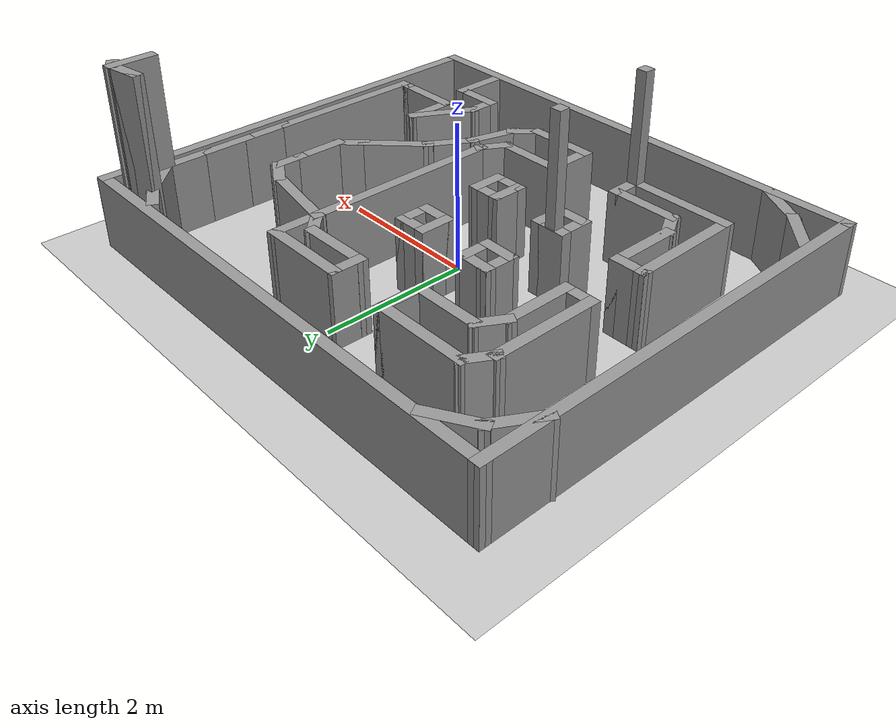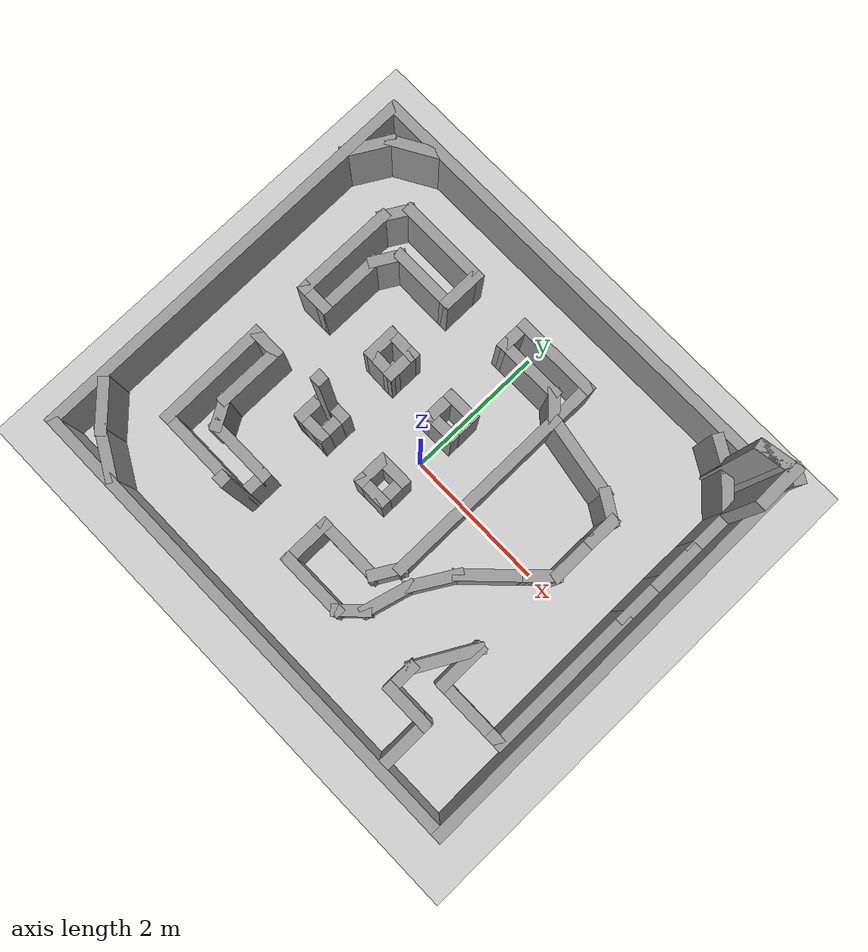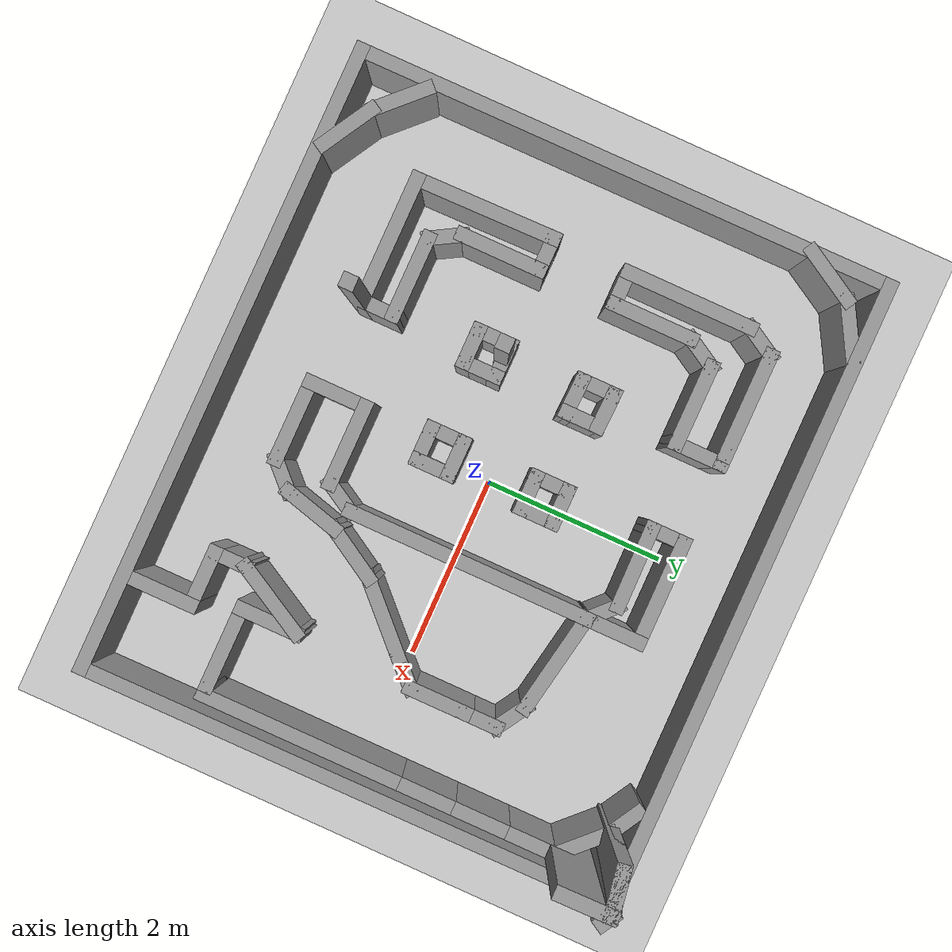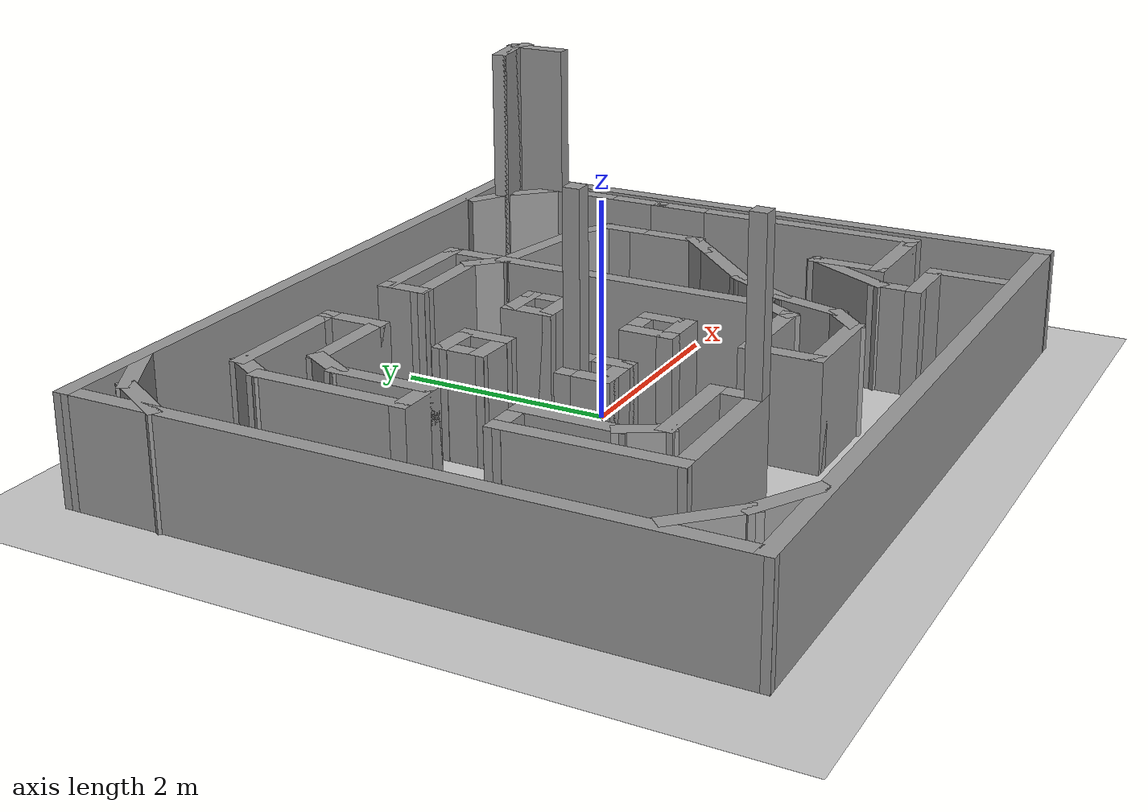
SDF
<sdf version="1.6">
 <world name="default">
  <light name="sun" type="directional">
   <pose>0 0 10 0 -0 0</pose>
   <diffuse>0.8 0.8 0.8 1</diffuse>
   <specular>0.2 0.2 0.2 1</specular>
   <attenuation>
    <range>1000</range>
    <constant>0.9</constant>
    <linear>0.01</linear>
    <quadratic>0.001</quadratic>
   </attenuation>
   <direction>-0.5 0.1 -0.9</direction>
  </light>
  <model name="ground_plane">
   <static>1</static>
   <link name="link">
    <collision name="collision">
     <geometry><plane><normal>0 0 1</normal><size>100 100</size></plane></geometry>
     <surface>
      <contact><collide_bitmask>65535</collide_bitmask></contact>
      <friction><ode><mu>100</mu><mu2>50</mu2></ode></friction>
     </surface>
    </collision>
    <visual name="visual">
     <cast_shadows>0</cast_shadows>
     <geometry><plane><normal>0 0 1</normal><size>100 100</size></plane></geometry>
     <material>
      <script><uri>file://media/materials/scripts/gazebo.material</uri><name>Gazebo/Grey</name></script>
     </material>
    </visual>
   </link>
  </model>
  <gravity>0 0 -9.8</gravity>
  <magnetic_field>6e-06 2.3e-05 -4.2e-05</magnetic_field>
  <atmosphere type="adiabatic"/>
  <physics name="default_physics" default="0" type="ode">
   <max_step_size>0.001</max_step_size>
   <real_time_factor>1</real_time_factor>
   <real_time_update_rate>1000</real_time_update_rate>
  </physics>
  <scene><ambient>0.4 0.4 0.4 1</ambient><background>0.7 0.7 0.7 1</background><shadows>1</shadows></scene>
  <audio><device>default</device></audio>
  <spherical_coordinates>
   <surface_model>EARTH_WGS84</surface_model>
   <latitude_deg>0</latitude_deg>
   <longitude_deg>0</longitude_deg>
   <elevation>0</elevation>
   <heading_deg>0</heading_deg>
  </spherical_coordinates>
  <model name="citymodel">
   <pose>-0.048468 -0.048597 0 0 -0 0</pose>
   <link name="Wall_111">
    <collision name="Wall_111_Collision">
     <geometry><box><size>0.15 0.15 2.5</size></box></geometry>
     <pose>0 0 1.25 0 -0 0</pose>
    </collision>
    <visual name="Wall_111_Visual">
     <pose>0 0 1.25 0 -0 0</pose>
     <geometry><box><size>0.15 0.15 2.5</size></box></geometry>
     <material>
      <script><uri>file://media/materials/scripts/gazebo.material</uri><name>Gazebo/Grey</name></script>
      <ambient>1 1 1 1</ambient>
     </material>
     <meta><layer>0</layer></meta>
    </visual>
    <pose>-1.17192 -0.348396 0 0 -0 0</pose>
   </link>
   <link name="Wall_113">
    <collision name="Wall_113_Collision">
     <geometry><box><size>0.510139 0.15 1</size></box></geometry>
     <pose>0 0 0.5 0 -0 0</pose>
    </collision>
    <visual name="Wall_113_Visual">
     <pose>0 0 0.5 0 -0 0</pose>
     <geometry><box><size>0.510139 0.15 1</size></box></geometry>
     <material>
      <script><uri>file://media/materials/scripts/gazebo.material</uri><name>Gazebo/Grey</name></script>
      <ambient>1 1 1 1</ambient>
     </material>
     <meta><layer>0</layer></meta>
    </visual>
    <pose>-1.10153 0.824597 0 0 -0 -0.027771</pose>
   </link>
   <link name="Wall_114">
    <collision name="Wall_114_Collision">
     <geometry><box><size>0.5 0.15 1</size></box></geometry>
     <pose>0 0 0.5 0 -0 0</pose>
    </collision>
    <visual name="Wall_114_Visual">
     <pose>0 0 0.5 0 -0 0</pose>
     <geometry><box><size>0.5 0.15 1</size></box></geometry>
     <material>
      <script><uri>file://media/materials/scripts/gazebo.material</uri><name>Gazebo/Grey</name></script>
      <ambient>1 1 1 1</ambient>
     </material>
     <meta><layer>0</layer></meta>
    </visual>
    <pose>-0.921532 0.644597 0 0 -0 -1.5708</pose>
   </link>
   <link name="Wall_115">
    <collision name="Wall_115_Collision">
     <geometry><box><size>0.509484 0.15 1</size></box></geometry>
     <pose>0 0 0.5 0 -0 0</pose>
    </collision>
    <visual name="Wall_115_Visual">
     <pose>0 0 0.5 0 -0 0</pose>
     <geometry><box><size>0.509484 0.15 1</size></box></geometry>
     <material>
      <script><uri>file://media/materials/scripts/gazebo.material</uri><name>Gazebo/Grey</name></script>
      <ambient>1 1 1 1</ambient>
     </material>
     <meta><layer>0</layer></meta>
    </visual>
    <pose>-1.10103 0.474097 0 0 -0 3.11653</pose>
   </link>
   <link name="Wall_116">
    <collision name="Wall_116_Collision">
     <geometry><box><size>0.500233 0.15 1</size></box></geometry>
     <pose>0 0 0.5 0 -0 0</pose>
    </collision>
    <visual name="Wall_116_Visual">
     <pose>0 0 0.5 0 -0 0</pose>
     <geometry><box><size>0.500233 0.15 1</size></box></geometry>
     <material>
      <script><uri>file://media/materials/scripts/gazebo.material</uri><name>Gazebo/Grey</name></script>
      <ambient>1 1 1 1</ambient>
     </material>
     <meta><layer>0</layer></meta>
    </visual>
    <pose>-1.28103 0.654097 0 0 -0 1.57364</pose>
   </link>
   <link name="Wall_118">
    <collision name="Wall_118_Collision">
     <geometry><box><size>0.5 0.15 1</size></box></geometry>
     <pose>0 0 0.5 0 -0 0</pose>
    </collision>
    <visual name="Wall_118_Visual">
     <pose>0 0 0.5 0 -0 0</pose>
     <geometry><box><size>0.5 0.15 1</size></box></geometry>
     <material>
      <script><uri>file://media/materials/scripts/gazebo.material</uri><name>Gazebo/Grey</name></script>
      <ambient>1 1 1 1</ambient>
     </material>
     <meta><layer>0</layer></meta>
    </visual>
    <pose>-0.025532 0.807597 0 0 -0 0</pose>
   </link>
   <link name="Wall_119">
    <collision name="Wall_119_Collision">
     <geometry><box><size>0.5 0.15 1</size></box></geometry>
     <pose>0 0 0.5 0 -0 0</pose>
    </collision>
    <visual name="Wall_119_Visual">
     <pose>0 0 0.5 0 -0 0</pose>
     <geometry><box><size>0.5 0.15 1</size></box></geometry>
     <material>
      <script><uri>file://media/materials/scripts/gazebo.material</uri><name>Gazebo/Grey</name></script>
      <ambient>1 1 1 1</ambient>
     </material>
     <meta><layer>0</layer></meta>
    </visual>
    <pose>0.149468 0.632597 0 0 -0 -1.5708</pose>
   </link>
   <link name="Wall_120">
    <collision name="Wall_120_Collision">
     <geometry><box><size>0.5 0.15 1</size></box></geometry>
     <pose>0 0 0.5 0 -0 0</pose>
    </collision>
    <visual name="Wall_120_Visual">
     <pose>0 0 0.5 0 -0 0</pose>
     <geometry><box><size>0.5 0.15 1</size></box></geometry>
     <material>
      <script><uri>file://media/materials/scripts/gazebo.material</uri><name>Gazebo/Grey</name></script>
      <ambient>1 1 1 1</ambient>
     </material>
     <meta><layer>0</layer></meta>
    </visual>
    <pose>-0.025532 0.457597 0 0 -0 3.14159</pose>
   </link>
   <link name="Wall_121">
    <collision name="Wall_121_Collision">
     <geometry><box><size>0.5 0.15 1</size></box></geometry>
     <pose>0 0 0.5 0 -0 0</pose>
    </collision>
    <visual name="Wall_121_Visual">
     <pose>0 0 0.5 0 -0 0</pose>
     <geometry><box><size>0.5 0.15 1</size></box></geometry>
     <material>
      <script><uri>file://media/materials/scripts/gazebo.material</uri><name>Gazebo/Grey</name></script>
      <ambient>1 1 1 1</ambient>
     </material>
     <meta><layer>0</layer></meta>
    </visual>
    <pose>-0.200532 0.632597 0 0 -0 1.5708</pose>
   </link>
   <link name="Wall_123">
    <collision name="Wall_123_Collision">
     <geometry><box><size>0.5 0.15 1</size></box></geometry>
     <pose>0 0 0.5 0 -0 0</pose>
    </collision>
    <visual name="Wall_123_Visual">
     <pose>0 0 0.5 0 -0 0</pose>
     <geometry><box><size>0.5 0.15 1</size></box></geometry>
     <material>
      <script><uri>file://media/materials/scripts/gazebo.material</uri><name>Gazebo/Grey</name></script>
      <ambient>1 1 1 1</ambient>
     </material>
     <meta><layer>0</layer></meta>
    </visual>
    <pose>-0.036532 -0.356403 0 0 -0 0</pose>
   </link>
   <link name="Wall_124">
    <collision name="Wall_124_Collision">
     <geometry><box><size>0.5 0.15 1</size></box></geometry>
     <pose>0 0 0.5 0 -0 0</pose>
    </collision>
    <visual name="Wall_124_Visual">
     <pose>0 0 0.5 0 -0 0</pose>
     <geometry><box><size>0.5 0.15 1</size></box></geometry>
     <material>
      <script><uri>file://media/materials/scripts/gazebo.material</uri><name>Gazebo/Grey</name></script>
      <ambient>1 1 1 1</ambient>
     </material>
     <meta><layer>0</layer></meta>
    </visual>
    <pose>0.138468 -0.531403 0 0 -0 -1.5708</pose>
   </link>
   <link name="Wall_125">
    <collision name="Wall_125_Collision">
     <geometry><box><size>0.5 0.15 1</size></box></geometry>
     <pose>0 0 0.5 0 -0 0</pose>
    </collision>
    <visual name="Wall_125_Visual">
     <pose>0 0 0.5 0 -0 0</pose>
     <geometry><box><size>0.5 0.15 1</size></box></geometry>
     <material>
      <script><uri>file://media/materials/scripts/gazebo.material</uri><name>Gazebo/Grey</name></script>
      <ambient>1 1 1 1</ambient>
     </material>
     <meta><layer>0</layer></meta>
    </visual>
    <pose>-0.036532 -0.706403 0 0 -0 3.14159</pose>
   </link>
   <link name="Wall_126">
    <collision name="Wall_126_Collision">
     <geometry><box><size>0.5 0.15 1</size></box></geometry>
     <pose>0 0 0.5 0 -0 0</pose>
    </collision>
    <visual name="Wall_126_Visual">
     <pose>0 0 0.5 0 -0 0</pose>
     <geometry><box><size>0.5 0.15 1</size></box></geometry>
     <material>
      <script><uri>file://media/materials/scripts/gazebo.material</uri><name>Gazebo/Grey</name></script>
      <ambient>1 1 1 1</ambient>
     </material>
     <meta><layer>0</layer></meta>
    </visual>
    <pose>-0.211532 -0.531403 0 0 -0 1.5708</pose>
   </link>
   <link name="Wall_130">
    <collision name="Wall_130_Collision">
     <geometry><box><size>0.5 0.15 1</size></box></geometry>
     <pose>0 0 0.5 0 -0 0</pose>
    </collision>
    <visual name="Wall_130_Visual">
     <pose>0 0 0.5 0 -0 0</pose>
     <geometry><box><size>0.5 0.15 1</size></box></geometry>
     <material>
      <script><uri>file://media/materials/scripts/gazebo.material</uri><name>Gazebo/Grey</name></script>
      <ambient>1 1 1 1</ambient>
     </material>
     <meta><layer>0</layer></meta>
    </visual>
    <pose>-1.13353 -0.683403 0 0 -0 0</pose>
   </link>
   <link name="Wall_131">
    <collision name="Wall_131_Collision">
     <geometry><box><size>0.5 0.15 1</size></box></geometry>
     <pose>0 0 0.5 0 -0 0</pose>
    </collision>
    <visual name="Wall_131_Visual">
     <pose>0 0 0.5 0 -0 0</pose>
     <geometry><box><size>0.5 0.15 1</size></box></geometry>
     <material>
      <script><uri>file://media/materials/scripts/gazebo.material</uri><name>Gazebo/Grey</name></script>
      <ambient>1 1 1 1</ambient>
     </material>
     <meta><layer>0</layer></meta>
    </visual>
    <pose>-0.958532 -0.508403 0 0 -0 1.5708</pose>
   </link>
   <link name="Wall_132">
    <collision name="Wall_132_Collision">
     <geometry><box><size>0.5 0.15 1</size></box></geometry>
     <pose>0 0 0.5 0 -0 0</pose>
    </collision>
    <visual name="Wall_132_Visual">
     <pose>0 0 0.5 0 -0 0</pose>
     <geometry><box><size>0.5 0.15 1</size></box></geometry>
     <material>
      <script><uri>file://media/materials/scripts/gazebo.material</uri><name>Gazebo/Grey</name></script>
      <ambient>1 1 1 1</ambient>
     </material>
     <meta><layer>0</layer></meta>
    </visual>
    <pose>-1.13353 -0.333403 0 0 -0 3.14159</pose>
   </link>
   <link name="Wall_133">
    <collision name="Wall_133_Collision">
     <geometry><box><size>0.5 0.15 1</size></box></geometry>
     <pose>0 0 0.5 0 -0 0</pose>
    </collision>
    <visual name="Wall_133_Visual">
     <pose>0 0 0.5 0 -0 0</pose>
     <geometry><box><size>0.5 0.15 1</size></box></geometry>
     <material>
      <script><uri>file://media/materials/scripts/gazebo.material</uri><name>Gazebo/Grey</name></script>
      <ambient>1 1 1 1</ambient>
     </material>
     <meta><layer>0</layer></meta>
    </visual>
    <pose>-1.30853 -0.508403 0 0 -0 -1.5708</pose>
   </link>
   <link name="Wall_135">
    <collision name="Wall_135_Collision">
     <geometry><box><size>0.750333 0.15 1</size></box></geometry>
     <pose>0 0 0.5 0 -0 0</pose>
    </collision>
    <visual name="Wall_135_Visual">
     <pose>0 0 0.5 0 -0 0</pose>
     <geometry><box><size>0.750333 0.15 1</size></box></geometry>
     <material>
      <script><uri>file://media/materials/scripts/gazebo.material</uri><name>Gazebo/Grey</name></script>
      <ambient>1 1 1 1</ambient>
     </material>
     <meta><layer>0</layer></meta>
    </visual>
    <pose>-2.86353 2.7306 0 0 -0 -2.61831</pose>
   </link>
   <link name="Wall_138">
    <collision name="Wall_138_Collision">
     <geometry><box><size>0.749782 0.15 1</size></box></geometry>
     <pose>0 0 0.5 0 -0 0</pose>
    </collision>
    <visual name="Wall_138_Visual">
     <pose>0 0 0.5 0 -0 0</pose>
     <geometry><box><size>0.749782 0.15 1</size></box></geometry>
     <material>
      <script><uri>file://media/materials/scripts/gazebo.material</uri><name>Gazebo/Grey</name></script>
      <ambient>1 1 1 1</ambient>
     </material>
     <meta><layer>0</layer></meta>
    </visual>
    <pose>-3.27353 2.3206 0 0 -0 -2.09408</pose>
   </link>
   <link name="Wall_140">
    <collision name="Wall_140_Collision">
     <geometry><box><size>0.75 0.15 1</size></box></geometry>
     <pose>0 0 0.5 0 -0 0</pose>
    </collision>
    <visual name="Wall_140_Visual">
     <pose>0 0 0.5 0 -0 0</pose>
     <geometry><box><size>0.75 0.15 1</size></box></geometry>
     <material>
      <script><uri>file://media/materials/scripts/gazebo.material</uri><name>Gazebo/Grey</name></script>
      <ambient>1 1 1 1</ambient>
     </material>
     <meta><layer>0</layer></meta>
    </visual>
    <pose>-2.63253 -2.7404 0 0 -0 2.61831</pose>
   </link>
   <link name="Wall_141">
    <collision name="Wall_141_Collision">
     <geometry><box><size>0.75 0.15 1</size></box></geometry>
     <pose>0 0 0.5 0 -0 0</pose>
    </collision>
    <visual name="Wall_141_Visual">
     <pose>0 0 0.5 0 -0 0</pose>
     <geometry><box><size>0.75 0.15 1</size></box></geometry>
     <material>
      <script><uri>file://media/materials/scripts/gazebo.material</uri><name>Gazebo/Grey</name></script>
      <ambient>1 1 1 1</ambient>
     </material>
     <meta><layer>0</layer></meta>
    </visual>
    <pose>-3.10453 -2.3779 0 0 -0 2.35502</pose>
   </link>
   <link name="Wall_143">
    <collision name="Wall_143_Collision">
     <geometry><box><size>0.25 0.15 2.5</size></box></geometry>
     <pose>0 0 1.25 0 -0 0</pose>
    </collision>
    <visual name="Wall_143_Visual">
     <pose>0 0 1.25 0 -0 0</pose>
     <geometry><box><size>0.25 0.15 2.5</size></box></geometry>
     <material>
      <script><uri>file://media/materials/scripts/gazebo.material</uri><name>Gazebo/Grey</name></script>
      <ambient>1 1 1 1</ambient>
     </material>
     <meta><layer>0</layer></meta>
    </visual>
    <pose>3.22946 2.66847 0 0 -0 2.61799</pose>
   </link>
   <link name="Wall_144">
    <collision name="Wall_144_Collision">
     <geometry><box><size>0.573495 0.15 2.5</size></box></geometry>
     <pose>0 0 1.25 0 -0 0</pose>
    </collision>
    <visual name="Wall_144_Visual">
     <pose>0 0 1.25 0 -0 0</pose>
     <geometry><box><size>0.573495 0.15 2.5</size></box></geometry>
     <material>
      <script><uri>file://media/materials/scripts/gazebo.material</uri><name>Gazebo/Grey</name></script>
      <ambient>1 1 1 1</ambient>
     </material>
     <meta><layer>0</layer></meta>
    </visual>
    <pose>2.97731 2.65854 0 0 -0 -2.97583</pose>
   </link>
   <link name="Wall_145">
    <collision name="Wall_145_Collision">
     <geometry><box><size>0.573495 0.15 2.5</size></box></geometry>
     <pose>0 0 1.25 0 -0 0</pose>
    </collision>
    <visual name="Wall_145_Visual">
     <pose>0 0 1.25 0 -0 0</pose>
     <geometry><box><size>0.573495 0.15 2.5</size></box></geometry>
     <material>
      <script><uri>file://media/materials/scripts/gazebo.material</uri><name>Gazebo/Grey</name></script>
      <ambient>1 1 1 1</ambient>
     </material>
     <meta><layer>0</layer></meta>
    </visual>
    <pose>2.97731 2.65854 0 0 -0 0.165759</pose>
   </link>
   <link name="Wall_146">
    <collision name="Wall_146_Collision">
     <geometry><box><size>0.573495 0.15 2.5</size></box></geometry>
     <pose>0 0 1.25 0 -0 0</pose>
    </collision>
    <visual name="Wall_146_Visual">
     <pose>0 0 1.25 0 -0 0</pose>
     <geometry><box><size>0.573495 0.15 2.5</size></box></geometry>
     <material>
      <script><uri>file://media/materials/scripts/gazebo.material</uri><name>Gazebo/Grey</name></script>
      <ambient>1 1 1 1</ambient>
     </material>
     <meta><layer>0</layer></meta>
    </visual>
    <pose>2.97731 2.65854 0 0 -0 -2.97583</pose>
   </link>
   <link name="Wall_149">
    <collision name="Wall_149_Collision">
     <geometry><box><size>0.643918 0.15 2.5</size></box></geometry>
     <pose>0 0 1.25 0 -0 0</pose>
    </collision>
    <visual name="Wall_149_Visual">
     <pose>0 0 1.25 0 -0 0</pose>
     <geometry><box><size>0.643918 0.15 2.5</size></box></geometry>
     <material>
      <script><uri>file://media/materials/scripts/gazebo.material</uri><name>Gazebo/Grey</name></script>
      <ambient>1 1 1 1</ambient>
     </material>
     <meta><layer>0</layer></meta>
    </visual>
    <pose>3.18931 2.44654 0 0 -0 1.58357</pose>
   </link>
   <link name="Wall_27">
    <collision name="Wall_27_Collision">
     <geometry><box><size>7 0.15 1</size></box></geometry>
     <pose>0 0 0.5 0 -0 0</pose>
    </collision>
    <visual name="Wall_27_Visual">
     <pose>0 0 0.5 0 -0 0</pose>
     <geometry><box><size>7 0.15 1</size></box></geometry>
     <material>
      <script><uri>file://media/materials/scripts/gazebo.material</uri><name>Gazebo/Grey</name></script>
      <ambient>1 1 1 1</ambient>
     </material>
     <meta><layer>0</layer></meta>
    </visual>
    <pose>0.025468 -2.9324 0 0 -0 0</pose>
   </link>
   <link name="Wall_28">
    <collision name="Wall_28_Collision">
     <geometry><box><size>6.01469 0.15 1</size></box></geometry>
     <pose>0 0 0.5 0 -0 0</pose>
    </collision>
    <visual name="Wall_28_Visual">
     <pose>0 0 0.5 0 -0 0</pose>
     <geometry><box><size>6.01469 0.15 1</size></box></geometry>
     <material>
      <script><uri>file://media/materials/scripts/gazebo.material</uri><name>Gazebo/Grey</name></script>
      <ambient>1 1 1 1</ambient>
     </material>
     <meta><layer>0</layer></meta>
    </visual>
    <pose>3.43597 9.7e-05 0 0 -0 1.57574</pose>
   </link>
   <link name="Wall_29">
    <collision name="Wall_29_Collision">
     <geometry><box><size>7 0.15 1</size></box></geometry>
     <pose>0 0 0.5 0 -0 0</pose>
    </collision>
    <visual name="Wall_29_Visual">
     <pose>0 0 0.5 0 -0 0</pose>
     <geometry><box><size>7 0.15 1</size></box></geometry>
     <material>
      <script><uri>file://media/materials/scripts/gazebo.material</uri><name>Gazebo/Grey</name></script>
      <ambient>1 1 1 1</ambient>
     </material>
     <meta><layer>0</layer></meta>
    </visual>
    <pose>-0.003532 2.9251 0 0 -0 -3.1394</pose>
   </link>
   <link name="Wall_30">
    <collision name="Wall_30_Collision">
     <geometry><box><size>6.00007 0.15 1</size></box></geometry>
     <pose>0 0 0.5 0 -0 0</pose>
    </collision>
    <visual name="Wall_30_Visual">
     <pose>0 0 0.5 0 -0 0</pose>
     <geometry><box><size>6.00007 0.15 1</size></box></geometry>
     <material>
      <script><uri>file://media/materials/scripts/gazebo.material</uri><name>Gazebo/Grey</name></script>
      <ambient>1 1 1 1</ambient>
     </material>
     <meta><layer>0</layer></meta>
    </visual>
    <pose>-3.41403 -0.007403 0 0 -0 -1.56584</pose>
   </link>
   <link name="Wall_32">
    <collision name="Wall_32_Collision">
     <geometry><box><size>1.5 0.15 1</size></box></geometry>
     <pose>0 0 0.5 0 -0 0</pose>
    </collision>
    <visual name="Wall_32_Visual">
     <pose>0 0 0.5 0 -0 0</pose>
     <geometry><box><size>1.5 0.15 1</size></box></geometry>
     <material>
      <script><uri>file://media/materials/scripts/gazebo.material</uri><name>Gazebo/Grey</name></script>
      <ambient>1 1 1 1</ambient>
     </material>
     <meta><layer>0</layer></meta>
    </visual>
    <pose>-2.46653 1.1326 0 0 -0 1.5708</pose>
   </link>
   <link name="Wall_36">
    <collision name="Wall_36_Collision">
     <geometry><box><size>0.5 0.15 1</size></box></geometry>
     <pose>0 0 0.5 0 -0 0</pose>
    </collision>
    <visual name="Wall_36_Visual">
     <pose>0 0 0.5 0 -0 0</pose>
     <geometry><box><size>0.5 0.15 1</size></box></geometry>
     <material>
      <script><uri>file://media/materials/scripts/gazebo.material</uri><name>Gazebo/Grey</name></script>
      <ambient>1 1 1 1</ambient>
     </material>
     <meta><layer>0</layer></meta>
    </visual>
    <pose>-2.37903 1.9591 0 0 -0 1.04704</pose>
   </link>
   <link name="Wall_37">
    <collision name="Wall_37_Collision">
     <geometry><box><size>1.25 0.15 1</size></box></geometry>
     <pose>0 0 0.5 0 -0 0</pose>
    </collision>
    <visual name="Wall_37_Visual">
     <pose>0 0 0.5 0 -0 0</pose>
     <geometry><box><size>1.25 0.15 1</size></box></geometry>
     <material>
      <script><uri>file://media/materials/scripts/gazebo.material</uri><name>Gazebo/Grey</name></script>
      <ambient>1 1 1 1</ambient>
     </material>
     <meta><layer>0</layer></meta>
    </visual>
    <pose>-1.74153 2.1106 0 0 -0 0</pose>
   </link>
   <link name="Wall_38">
    <collision name="Wall_38_Collision">
     <geometry><box><size>0.25 0.15 1</size></box></geometry>
     <pose>0 0 0.5 0 -0 0</pose>
    </collision>
    <visual name="Wall_38_Visual">
     <pose>0 0 0.5 0 -0 0</pose>
     <geometry><box><size>0.25 0.15 1</size></box></geometry>
     <material>
      <script><uri>file://media/materials/scripts/gazebo.material</uri><name>Gazebo/Grey</name></script>
      <ambient>1 1 1 1</ambient>
     </material>
     <meta><layer>0</layer></meta>
    </visual>
    <pose>-1.14153 2.1106 0 0 -0 0</pose>
   </link>
   <link name="Wall_40">
    <collision name="Wall_40_Collision">
     <geometry><box><size>0.5 0.15 1</size></box></geometry>
     <pose>0 0 0.5 0 -0 0</pose>
    </collision>
    <visual name="Wall_40_Visual">
     <pose>0 0 0.5 0 -0 0</pose>
     <geometry><box><size>0.5 0.15 1</size></box></geometry>
     <material>
      <script><uri>file://media/materials/scripts/gazebo.material</uri><name>Gazebo/Grey</name></script>
      <ambient>1 1 1 1</ambient>
     </material>
     <meta><layer>0</layer></meta>
    </visual>
    <pose>-2.29153 0.457597 0 0 -0 0</pose>
   </link>
   <link name="Wall_41">
    <collision name="Wall_41_Collision">
     <geometry><box><size>1 0.15 1</size></box></geometry>
     <pose>0 0 0.5 0 -0 0</pose>
    </collision>
    <visual name="Wall_41_Visual">
     <pose>0 0 0.5 0 -0 0</pose>
     <geometry><box><size>1 0.15 1</size></box></geometry>
     <material>
      <script><uri>file://media/materials/scripts/gazebo.material</uri><name>Gazebo/Grey</name></script>
      <ambient>1 1 1 1</ambient>
     </material>
     <meta><layer>0</layer></meta>
    </visual>
    <pose>-2.11653 0.882597 0 0 -0 1.5708</pose>
   </link>
   <link name="Wall_42">
    <collision name="Wall_42_Collision">
     <geometry><box><size>0.5 0.15 1</size></box></geometry>
     <pose>0 0 0.5 0 -0 0</pose>
    </collision>
    <visual name="Wall_42_Visual">
     <pose>0 0 0.5 0 -0 0</pose>
     <geometry><box><size>0.5 0.15 1</size></box></geometry>
     <material>
      <script><uri>file://media/materials/scripts/gazebo.material</uri><name>Gazebo/Grey</name></script>
      <ambient>1 1 1 1</ambient>
     </material>
     <meta><layer>0</layer></meta>
    </visual>
    <pose>-2.02903 1.4591 0 0 -0 1.04704</pose>
   </link>
   <link name="Wall_43">
    <collision name="Wall_43_Collision">
     <geometry><box><size>1 0.15 1</size></box></geometry>
     <pose>0 0 0.5 0 -0 0</pose>
    </collision>
    <visual name="Wall_43_Visual">
     <pose>0 0 0.5 0 -0 0</pose>
     <geometry><box><size>1 0.15 1</size></box></geometry>
     <material>
      <script><uri>file://media/materials/scripts/gazebo.material</uri><name>Gazebo/Grey</name></script>
      <ambient>1 1 1 1</ambient>
     </material>
     <meta><layer>0</layer></meta>
    </visual>
    <pose>-1.51653 1.6106 0 0 -0 0</pose>
   </link>
   <link name="Wall_44">
    <collision name="Wall_44_Collision">
     <geometry><box><size>0.65 0.15 1</size></box></geometry>
     <pose>0 0 0.5 0 -0 0</pose>
    </collision>
    <visual name="Wall_44_Visual">
     <pose>0 0 0.5 0 -0 0</pose>
     <geometry><box><size>0.65 0.15 1</size></box></geometry>
     <material>
      <script><uri>file://media/materials/scripts/gazebo.material</uri><name>Gazebo/Grey</name></script>
      <ambient>1 1 1 1</ambient>
     </material>
     <meta><layer>0</layer></meta>
    </visual>
    <pose>-1.09153 1.8606 0 0 -0 1.5708</pose>
   </link>
   <link name="Wall_48">
    <collision name="Wall_48_Collision">
     <geometry><box><size>0.5 0.15 1</size></box></geometry>
     <pose>0 0 0.5 0 -0 0</pose>
    </collision>
    <visual name="Wall_48_Visual">
     <pose>0 0 0.5 0 -0 0</pose>
     <geometry><box><size>0.5 0.15 1</size></box></geometry>
     <material>
      <script><uri>file://media/materials/scripts/gazebo.material</uri><name>Gazebo/Grey</name></script>
      <ambient>1 1 1 1</ambient>
     </material>
     <meta><layer>0</layer></meta>
    </visual>
    <pose>-2.29453 -0.377403 0 0 -0 0</pose>
   </link>
   <link name="Wall_49">
    <collision name="Wall_49_Collision">
     <geometry><box><size>1 0.15 1</size></box></geometry>
     <pose>0 0 0.5 0 -0 0</pose>
    </collision>
    <visual name="Wall_49_Visual">
     <pose>0 0 0.5 0 -0 0</pose>
     <geometry><box><size>1 0.15 1</size></box></geometry>
     <material>
      <script><uri>file://media/materials/scripts/gazebo.material</uri><name>Gazebo/Grey</name></script>
      <ambient>1 1 1 1</ambient>
     </material>
     <meta><layer>0</layer></meta>
    </visual>
    <pose>-2.11953 -0.802403 0 0 -0 -1.5708</pose>
   </link>
   <link name="Wall_56">
    <collision name="Wall_56_Collision">
     <geometry><box><size>0.5 0.15 1</size></box></geometry>
     <pose>0 0 0.5 0 -0 0</pose>
    </collision>
    <visual name="Wall_56_Visual">
     <pose>0 0 0.5 0 -0 0</pose>
     <geometry><box><size>0.5 0.15 1</size></box></geometry>
     <material>
      <script><uri>file://media/materials/scripts/gazebo.material</uri><name>Gazebo/Grey</name></script>
      <ambient>1 1 1 1</ambient>
     </material>
     <meta><layer>0</layer></meta>
    </visual>
    <pose>-2.03203 -1.3789 0 0 -0 -1.04704</pose>
   </link>
   <link name="Wall_57">
    <collision name="Wall_57_Collision">
     <geometry><box><size>1 0.15 1</size></box></geometry>
     <pose>0 0 0.5 0 -0 0</pose>
    </collision>
    <visual name="Wall_57_Visual">
     <pose>0 0 0.5 0 -0 0</pose>
     <geometry><box><size>1 0.15 1</size></box></geometry>
     <material>
      <script><uri>file://media/materials/scripts/gazebo.material</uri><name>Gazebo/Grey</name></script>
      <ambient>1 1 1 1</ambient>
     </material>
     <meta><layer>0</layer></meta>
    </visual>
    <pose>-1.51953 -1.5304 0 0 -0 0</pose>
   </link>
   <link name="Wall_58">
    <collision name="Wall_58_Collision">
     <geometry><box><size>0.5 0.15 1</size></box></geometry>
     <pose>0 0 0.5 0 -0 0</pose>
    </collision>
    <visual name="Wall_58_Visual">
     <pose>0 0 0.5 0 -0 0</pose>
     <geometry><box><size>0.5 0.15 1</size></box></geometry>
     <material>
      <script><uri>file://media/materials/scripts/gazebo.material</uri><name>Gazebo/Grey</name></script>
      <ambient>1 1 1 1</ambient>
     </material>
     <meta><layer>0</layer></meta>
    </visual>
    <pose>-1.09453 -1.7054 0 0 -0 -1.5708</pose>
   </link>
   <link name="Wall_59">
    <collision name="Wall_59_Collision">
     <geometry><box><size>0.15 0.15 2.5</size></box></geometry>
     <pose>0 0 1.25 0 -0 0</pose>
    </collision>
    <visual name="Wall_59_Visual">
     <pose>0 0 1.25 0 -0 0</pose>
     <geometry><box><size>0.15 0.15 2.5</size></box></geometry>
     <material>
      <script><uri>file://media/materials/scripts/gazebo.material</uri><name>Gazebo/Grey</name></script>
      <ambient>1 1 1 1</ambient>
     </material>
     <meta><layer>0</layer></meta>
    </visual>
    <pose>-1.09453 -1.8804 0 0 -0 0</pose>
   </link>
   <link name="Wall_60">
    <collision name="Wall_60_Collision">
     <geometry><box><size>0.15 0.15 2.5</size></box></geometry>
     <pose>0 0 1.25 0 -0 0</pose>
    </collision>
    <visual name="Wall_60_Visual">
     <pose>0 0 1.25 0 -0 0</pose>
     <geometry><box><size>0.15 0.15 2.5</size></box></geometry>
     <material>
      <script><uri>file://media/materials/scripts/gazebo.material</uri><name>Gazebo/Grey</name></script>
      <ambient>1 1 1 1</ambient>
     </material>
     <meta><layer>0</layer></meta>
    </visual>
    <pose>-1.09453 -1.8804 0 0 -0 0</pose>
   </link>
   <link name="Wall_61">
    <collision name="Wall_61_Collision">
     <geometry><box><size>1.5 0.15 1</size></box></geometry>
     <pose>0 0 0.5 0 -0 0</pose>
    </collision>
    <visual name="Wall_61_Visual">
     <pose>0 0 0.5 0 -0 0</pose>
     <geometry><box><size>1.5 0.15 1</size></box></geometry>
     <material>
      <script><uri>file://media/materials/scripts/gazebo.material</uri><name>Gazebo/Grey</name></script>
      <ambient>1 1 1 1</ambient>
     </material>
     <meta><layer>0</layer></meta>
    </visual>
    <pose>-1.76953 -1.8804 0 0 -0 3.14159</pose>
   </link>
   <link name="Wall_62">
    <collision name="Wall_62_Collision">
     <geometry><box><size>1.65332 0.15 1</size></box></geometry>
     <pose>0 0 0.5 0 -0 0</pose>
    </collision>
    <visual name="Wall_62_Visual">
     <pose>0 0 0.5 0 -0 0</pose>
     <geometry><box><size>1.65332 0.15 1</size></box></geometry>
     <material>
      <script><uri>file://media/materials/scripts/gazebo.material</uri><name>Gazebo/Grey</name></script>
      <ambient>1 1 1 1</ambient>
     </material>
     <meta><layer>0</layer></meta>
    </visual>
    <pose>-2.45703 -1.1289 0 0 -0 1.58743</pose>
   </link>
   <link name="Wall_64">
    <collision name="Wall_64_Collision">
     <geometry><box><size>0.5 0.15 1</size></box></geometry>
     <pose>0 0 0.5 0 -0 0</pose>
    </collision>
    <visual name="Wall_64_Visual">
     <pose>0 0 0.5 0 -0 0</pose>
     <geometry><box><size>0.5 0.15 1</size></box></geometry>
     <material>
      <script><uri>file://media/materials/scripts/gazebo.material</uri><name>Gazebo/Grey</name></script>
      <ambient>1 1 1 1</ambient>
     </material>
     <meta><layer>0</layer></meta>
    </visual>
    <pose>-0.204532 1.9156 0 0 -0 -1.5708</pose>
   </link>
   <link name="Wall_65">
    <collision name="Wall_65_Collision">
     <geometry><box><size>1 0.15 1</size></box></geometry>
     <pose>0 0 0.5 0 -0 0</pose>
    </collision>
    <visual name="Wall_65_Visual">
     <pose>0 0 0.5 0 -0 0</pose>
     <geometry><box><size>1 0.15 1</size></box></geometry>
     <material>
      <script><uri>file://media/materials/scripts/gazebo.material</uri><name>Gazebo/Grey</name></script>
      <ambient>1 1 1 1</ambient>
     </material>
     <meta><layer>0</layer></meta>
    </visual>
    <pose>0.220468 1.7461 0 0 -0 0.01294</pose>
   </link>
   <link name="Wall_66">
    <collision name="Wall_66_Collision">
     <geometry><box><size>0.493035 0.15 1</size></box></geometry>
     <pose>0 0 0.5 0 -0 0</pose>
    </collision>
    <visual name="Wall_66_Visual">
     <pose>0 0 0.5 0 -0 0</pose>
     <geometry><box><size>0.493035 0.15 1</size></box></geometry>
     <material>
      <script><uri>file://media/materials/scripts/gazebo.material</uri><name>Gazebo/Grey</name></script>
      <ambient>1 1 1 1</ambient>
     </material>
     <meta><layer>0</layer></meta>
    </visual>
    <pose>0.769468 1.6331 0 0 -0 -0.762722</pose>
   </link>
   <link name="Wall_67">
    <collision name="Wall_67_Collision">
     <geometry><box><size>2.772 0.15 1</size></box></geometry>
     <pose>0 0 0.5 0 -0 0</pose>
    </collision>
    <visual name="Wall_67_Visual">
     <pose>0 0 0.5 0 -0 0</pose>
     <geometry><box><size>2.772 0.15 1</size></box></geometry>
     <material>
      <script><uri>file://media/materials/scripts/gazebo.material</uri><name>Gazebo/Grey</name></script>
      <ambient>1 1 1 1</ambient>
     </material>
     <meta><layer>0</layer></meta>
    </visual>
    <pose>0.893468 0.203597 0 0 -0 -1.5708</pose>
   </link>
   <link name="Wall_68">
    <collision name="Wall_68_Collision">
     <geometry><box><size>0.5 0.15 1</size></box></geometry>
     <pose>0 0 0.5 0 -0 0</pose>
    </collision>
    <visual name="Wall_68_Visual">
     <pose>0 0 0.5 0 -0 0</pose>
     <geometry><box><size>0.5 0.15 1</size></box></geometry>
     <material>
      <script><uri>file://media/materials/scripts/gazebo.material</uri><name>Gazebo/Grey</name></script>
      <ambient>1 1 1 1</ambient>
     </material>
     <meta><layer>0</layer></meta>
    </visual>
    <pose>0.805968 -1.2589 0 0 -0 -2.09455</pose>
   </link>
   <link name="Wall_69">
    <collision name="Wall_69_Collision">
     <geometry><box><size>1 0.15 1</size></box></geometry>
     <pose>0 0 0.5 0 -0 0</pose>
    </collision>
    <visual name="Wall_69_Visual">
     <pose>0 0 0.5 0 -0 0</pose>
     <geometry><box><size>1 0.15 1</size></box></geometry>
     <material>
      <script><uri>file://media/materials/scripts/gazebo.material</uri><name>Gazebo/Grey</name></script>
      <ambient>1 1 1 1</ambient>
     </material>
     <meta><layer>0</layer></meta>
    </visual>
    <pose>0.293468 -1.4104 0 0 -0 3.14159</pose>
   </link>
   <link name="Wall_70">
    <collision name="Wall_70_Collision">
     <geometry><box><size>0.75 0.15 1</size></box></geometry>
     <pose>0 0 0.5 0 -0 0</pose>
    </collision>
    <visual name="Wall_70_Visual">
     <pose>0 0 0.5 0 -0 0</pose>
     <geometry><box><size>0.75 0.15 1</size></box></geometry>
     <material>
      <script><uri>file://media/materials/scripts/gazebo.material</uri><name>Gazebo/Grey</name></script>
      <ambient>1 1 1 1</ambient>
     </material>
     <meta><layer>0</layer></meta>
    </visual>
    <pose>-0.131532 -1.7104 0 0 -0 -1.5708</pose>
   </link>
   <link name="Wall_71">
    <collision name="Wall_71_Collision">
     <geometry><box><size>1 0.15 1</size></box></geometry>
     <pose>0 0 0.5 0 -0 0</pose>
    </collision>
    <visual name="Wall_71_Visual">
     <pose>0 0 0.5 0 -0 0</pose>
     <geometry><box><size>1 0.15 1</size></box></geometry>
     <material>
      <script><uri>file://media/materials/scripts/gazebo.material</uri><name>Gazebo/Grey</name></script>
      <ambient>1 1 1 1</ambient>
     </material>
     <meta><layer>0</layer></meta>
    </visual>
    <pose>0.293468 -2.0104 0 0 -0 0</pose>
   </link>
   <link name="Wall_72">
    <collision name="Wall_72_Collision">
     <geometry><box><size>0.5 0.15 1</size></box></geometry>
     <pose>0 0 0.5 0 -0 0</pose>
    </collision>
    <visual name="Wall_72_Visual">
     <pose>0 0 0.5 0 -0 0</pose>
     <geometry><box><size>0.5 0.15 1</size></box></geometry>
     <material>
      <script><uri>file://media/materials/scripts/gazebo.material</uri><name>Gazebo/Grey</name></script>
      <ambient>1 1 1 1</ambient>
     </material>
     <meta><layer>0</layer></meta>
    </visual>
    <pose>0.841968 -1.8869 0 0 -0 0.785398</pose>
   </link>
   <link name="Wall_73">
    <collision name="Wall_73_Collision">
     <geometry><box><size>0.750354 0.15 1</size></box></geometry>
     <pose>0 0 0.5 0 -0 0</pose>
    </collision>
    <visual name="Wall_73_Visual">
     <pose>0 0 0.5 0 -0 0</pose>
     <geometry><box><size>0.750354 0.15 1</size></box></geometry>
     <material>
      <script><uri>file://media/materials/scripts/gazebo.material</uri><name>Gazebo/Grey</name></script>
      <ambient>1 1 1 1</ambient>
     </material>
     <meta><layer>0</layer></meta>
    </visual>
    <pose>1.04297 -1.4734 0 0 -0 1.30966</pose>
   </link>
   <link name="Wall_74">
    <collision name="Wall_74_Collision">
     <geometry><box><size>0.754371 0.15 1</size></box></geometry>
     <pose>0 0 0.5 0 -0 0</pose>
    </collision>
    <visual name="Wall_74_Visual">
     <pose>0 0 0.5 0 -0 0</pose>
     <geometry><box><size>0.754371 0.15 1</size></box></geometry>
     <material>
      <script><uri>file://media/materials/scripts/gazebo.material</uri><name>Gazebo/Grey</name></script>
      <ambient>1 1 1 1</ambient>
     </material>
     <meta><layer>0</layer></meta>
    </visual>
    <pose>1.27447 -0.923403 0 0 -0 1.03605</pose>
   </link>
   <link name="Wall_75">
    <collision name="Wall_75_Collision">
     <geometry><box><size>1.00003 0.15 1</size></box></geometry>
     <pose>0 0 0.5 0 -0 0</pose>
    </collision>
    <visual name="Wall_75_Visual">
     <pose>0 0 0.5 0 -0 0</pose>
     <geometry><box><size>1.00003 0.15 1</size></box></geometry>
     <material>
      <script><uri>file://media/materials/scripts/gazebo.material</uri><name>Gazebo/Grey</name></script>
      <ambient>1 1 1 1</ambient>
     </material>
     <meta><layer>0</layer></meta>
    </visual>
    <pose>1.72947 -0.362903 0 0 -0 0.784567</pose>
   </link>
   <link name="Wall_76">
    <collision name="Wall_76_Collision">
     <geometry><box><size>0.493776 0.15 1</size></box></geometry>
     <pose>0 0 0.5 0 -0 0</pose>
    </collision>
    <visual name="Wall_76_Visual">
     <pose>0 0 0.5 0 -0 0</pose>
     <geometry><box><size>0.493776 0.15 1</size></box></geometry>
     <material>
      <script><uri>file://media/materials/scripts/gazebo.material</uri><name>Gazebo/Grey</name></script>
      <ambient>1 1 1 1</ambient>
     </material>
     <meta><layer>0</layer></meta>
    </visual>
    <pose>2.14997 0.061097 0 0 -0 0.801858</pose>
   </link>
   <link name="Wall_77">
    <collision name="Wall_77_Collision">
     <geometry><box><size>0.75 0.15 1</size></box></geometry>
     <pose>0 0 0.5 0 -0 0</pose>
    </collision>
    <visual name="Wall_77_Visual">
     <pose>0 0 0.5 0 -0 0</pose>
     <geometry><box><size>0.75 0.15 1</size></box></geometry>
     <material>
      <script><uri>file://media/materials/scripts/gazebo.material</uri><name>Gazebo/Grey</name></script>
      <ambient>1 1 1 1</ambient>
     </material>
     <meta><layer>0</layer></meta>
    </visual>
    <pose>2.26947 0.484597 0 0 -0 1.5708</pose>
   </link>
   <link name="Wall_78">
    <collision name="Wall_78_Collision">
     <geometry><box><size>0.5 0.15 1</size></box></geometry>
     <pose>0 0 0.5 0 -0 0</pose>
    </collision>
    <visual name="Wall_78_Visual">
     <pose>0 0 0.5 0 -0 0</pose>
     <geometry><box><size>0.5 0.15 1</size></box></geometry>
     <material>
      <script><uri>file://media/materials/scripts/gazebo.material</uri><name>Gazebo/Grey</name></script>
      <ambient>1 1 1 1</ambient>
     </material>
     <meta><layer>0</layer></meta>
    </visual>
    <pose>2.26947 0.959597 0 0 -0 1.5708</pose>
   </link>
   <link name="Wall_79">
    <collision name="Wall_79_Collision">
     <geometry><box><size>0.505535 0.15 1</size></box></geometry>
     <pose>0 0 0.5 0 -0 0</pose>
    </collision>
    <visual name="Wall_79_Visual">
     <pose>0 0 0.5 0 -0 0</pose>
     <geometry><box><size>0.505535 0.15 1</size></box></geometry>
     <material>
      <script><uri>file://media/materials/scripts/gazebo.material</uri><name>Gazebo/Grey</name></script>
      <ambient>1 1 1 1</ambient>
     </material>
     <meta><layer>0</layer></meta>
    </visual>
    <pose>2.11797 1.2276 0 0 -0 2.59104</pose>
   </link>
   <link name="Wall_80">
    <collision name="Wall_80_Collision">
     <geometry><box><size>1.24019 0.15 1</size></box></geometry>
     <pose>0 0 0.5 0 -0 0</pose>
    </collision>
    <visual name="Wall_80_Visual">
     <pose>0 0 0.5 0 -0 0</pose>
     <geometry><box><size>1.24019 0.15 1</size></box></geometry>
     <material>
      <script><uri>file://media/materials/scripts/gazebo.material</uri><name>Gazebo/Grey</name></script>
      <ambient>1 1 1 1</ambient>
     </material>
     <meta><layer>0</layer></meta>
    </visual>
    <pose>1.42997 1.4176 0 0 -0 2.96272</pose>
   </link>
   <link name="Wall_81">
    <collision name="Wall_81_Collision">
     <geometry><box><size>0.728 0.15 1</size></box></geometry>
     <pose>0 0 0.5 0 -0 0</pose>
    </collision>
    <visual name="Wall_81_Visual">
     <pose>0 0 0.5 0 -0 0</pose>
     <geometry><box><size>0.728 0.15 1</size></box></geometry>
     <material>
      <script><uri>file://media/materials/scripts/gazebo.material</uri><name>Gazebo/Grey</name></script>
      <ambient>1 1 1 1</ambient>
     </material>
     <meta><layer>0</layer></meta>
    </visual>
    <pose>0.893468 1.8036 0 0 -0 1.5708</pose>
   </link>
   <link name="Wall_82">
    <collision name="Wall_82_Collision">
     <geometry><box><size>1.24749 0.15 1</size></box></geometry>
     <pose>0 0 0.5 0 -0 0</pose>
    </collision>
    <visual name="Wall_82_Visual">
     <pose>0 0 0.5 0 -0 0</pose>
     <geometry><box><size>1.24749 0.15 1</size></box></geometry>
     <material>
      <script><uri>file://media/materials/scripts/gazebo.material</uri><name>Gazebo/Grey</name></script>
      <ambient>1 1 1 1</ambient>
     </material>
     <meta><layer>0</layer></meta>
    </visual>
    <pose>0.344468 2.0916 0 0 -0 -3.13977</pose>
   </link>
   <link name="Wall_84">
    <collision name="Wall_84_Collision">
     <geometry><box><size>0.75 0.15 1</size></box></geometry>
     <pose>0 0 0.5 0 -0 0</pose>
    </collision>
    <visual name="Wall_84_Visual">
     <pose>0 0 0.5 0 -0 0</pose>
     <geometry><box><size>0.75 0.15 1</size></box></geometry>
     <material>
      <script><uri>file://media/materials/scripts/gazebo.material</uri><name>Gazebo/Grey</name></script>
      <ambient>1 1 1 1</ambient>
     </material>
     <meta><layer>0</layer></meta>
    </visual>
    <pose>2.41747 -2.4864 0 0 -0 1.5708</pose>
   </link>
   <link name="Wall_85">
    <collision name="Wall_85_Collision">
     <geometry><box><size>0.73 0.15 1</size></box></geometry>
     <pose>0 0 0.5 0 -0 0</pose>
    </collision>
    <visual name="Wall_85_Visual">
     <pose>0 0 0.5 0 -0 0</pose>
     <geometry><box><size>0.73 0.15 1</size></box></geometry>
     <material>
      <script><uri>file://media/materials/scripts/gazebo.material</uri><name>Gazebo/Grey</name></script>
      <ambient>1 1 1 1</ambient>
     </material>
     <meta><layer>0</layer></meta>
    </visual>
    <pose>2.12747 -2.1864 0 0 -0 3.14159</pose>
   </link>
   <link name="Wall_86">
    <collision name="Wall_86_Collision">
     <geometry><box><size>0.5 0.15 1</size></box></geometry>
     <pose>0 0 0.5 0 -0 0</pose>
    </collision>
    <visual name="Wall_86_Visual">
     <pose>0 0 0.5 0 -0 0</pose>
     <geometry><box><size>0.5 0.15 1</size></box></geometry>
     <material>
      <script><uri>file://media/materials/scripts/gazebo.material</uri><name>Gazebo/Grey</name></script>
      <ambient>1 1 1 1</ambient>
     </material>
     <meta><layer>0</layer></meta>
    </visual>
    <pose>1.83747 -2.0114 0 0 -0 1.5708</pose>
   </link>
   <link name="Wall_87">
    <collision name="Wall_87_Collision">
     <geometry><box><size>0.990072 0.15 1</size></box></geometry>
     <pose>0 0 0.5 0 -0 0</pose>
    </collision>
    <visual name="Wall_87_Visual">
     <pose>0 0 0.5 0 -0 0</pose>
     <geometry><box><size>0.990072 0.15 1</size></box></geometry>
     <material>
      <script><uri>file://media/materials/scripts/gazebo.material</uri><name>Gazebo/Grey</name></script>
      <ambient>1 1 1 1</ambient>
     </material>
     <meta><layer>0</layer></meta>
    </visual>
    <pose>2.03997 -1.4684 0 0 -0 1.06774</pose>
   </link>
   <link name="Wall_88">
    <collision name="Wall_88_Collision">
     <geometry><box><size>0.75 0.15 1</size></box></geometry>
     <pose>0 0 0.5 0 -0 0</pose>
    </collision>
    <visual name="Wall_88_Visual">
     <pose>0 0 0.5 0 -0 0</pose>
     <geometry><box><size>0.75 0.15 1</size></box></geometry>
     <material>
      <script><uri>file://media/materials/scripts/gazebo.material</uri><name>Gazebo/Grey</name></script>
      <ambient>1 1 1 1</ambient>
     </material>
     <meta><layer>0</layer></meta>
    </visual>
    <pose>2.24247 -1.4004 0 0 -0 -1.5708</pose>
   </link>
   <link name="Wall_89">
    <collision name="Wall_89_Collision">
     <geometry><box><size>1 0.15 1</size></box></geometry>
     <pose>0 0 0.5 0 -0 0</pose>
    </collision>
    <visual name="Wall_89_Visual">
     <pose>0 0 0.5 0 -0 0</pose>
     <geometry><box><size>1 0.15 1</size></box></geometry>
     <material>
      <script><uri>file://media/materials/scripts/gazebo.material</uri><name>Gazebo/Grey</name></script>
      <ambient>1 1 1 1</ambient>
     </material>
     <meta><layer>0</layer></meta>
    </visual>
    <pose>2.66747 -1.7004 0 0 -0 0</pose>
   </link>
   <link name="Wall_90">
    <collision name="Wall_90_Collision">
     <geometry><box><size>0.25 0.15 1</size></box></geometry>
     <pose>0 0 0.5 0 -0 0</pose>
    </collision>
    <visual name="Wall_90_Visual">
     <pose>0 0 0.5 0 -0 0</pose>
     <geometry><box><size>0.25 0.15 1</size></box></geometry>
     <material>
      <script><uri>file://media/materials/scripts/gazebo.material</uri><name>Gazebo/Grey</name></script>
      <ambient>1 1 1 1</ambient>
     </material>
     <meta><layer>0</layer></meta>
    </visual>
    <pose>3.14247 -1.7004 0 0 -0 0</pose>
   </link>
   <link name="Wall_91">
    <collision name="Wall_91_Collision">
     <geometry><box><size>2.25 0.15 1</size></box></geometry>
     <pose>0 0 0.5 0 -0 0</pose>
    </collision>
    <visual name="Wall_91_Visual">
     <pose>0 0 0.5 0 -0 0</pose>
     <geometry><box><size>2.25 0.15 1</size></box></geometry>
     <material>
      <script><uri>file://media/materials/scripts/gazebo.material</uri><name>Gazebo/Grey</name></script>
      <ambient>1 1 1 1</ambient>
     </material>
     <meta><layer>0</layer></meta>
    </visual>
    <pose>3.19247 -0.650403 0 0 -0 1.5708</pose>
   </link>
   <link name="Wall_92">
    <collision name="Wall_92_Collision">
     <geometry><box><size>0.75 0.15 1</size></box></geometry>
     <pose>0 0 0.5 0 -0 0</pose>
    </collision>
    <visual name="Wall_92_Visual">
     <pose>0 0 0.5 0 -0 0</pose>
     <geometry><box><size>0.75 0.15 1</size></box></geometry>
     <material>
      <script><uri>file://media/materials/scripts/gazebo.material</uri><name>Gazebo/Grey</name></script>
      <ambient>1 1 1 1</ambient>
     </material>
     <meta><layer>0</layer></meta>
    </visual>
    <pose>3.19247 0.699597 0 0 -0 1.5708</pose>
   </link>
   <link name="Wall_93">
    <collision name="Wall_93_Collision">
     <geometry><box><size>0.75 0.15 1</size></box></geometry>
     <pose>0 0 0.5 0 -0 0</pose>
    </collision>
    <visual name="Wall_93_Visual">
     <pose>0 0 0.5 0 -0 0</pose>
     <geometry><box><size>0.75 0.15 1</size></box></geometry>
     <material>
      <script><uri>file://media/materials/scripts/gazebo.material</uri><name>Gazebo/Grey</name></script>
      <ambient>1 1 1 1</ambient>
     </material>
     <meta><layer>0</layer></meta>
    </visual>
    <pose>3.19247 1.2996 0 0 -0 1.5708</pose>
   </link>
   <link name="Wall_94">
    <collision name="Wall_94_Collision">
     <geometry><box><size>0.75 0.15 1</size></box></geometry>
     <pose>0 0 0.5 0 -0 0</pose>
    </collision>
    <visual name="Wall_94_Visual">
     <pose>0 0 0.5 0 -0 0</pose>
     <geometry><box><size>0.75 0.15 1</size></box></geometry>
     <material>
      <script><uri>file://media/materials/scripts/gazebo.material</uri><name>Gazebo/Grey</name></script>
      <ambient>1 1 1 1</ambient>
     </material>
     <meta><layer>0</layer></meta>
    </visual>
    <pose>3.19247 1.8996 0 0 -0 1.5708</pose>
   </link>
   <link name="Wall_95">
    <collision name="Wall_95_Collision">
     <geometry><box><size>0.75 0.15 1</size></box></geometry>
     <pose>0 0 0.5 0 -0 0</pose>
    </collision>
    <visual name="Wall_95_Visual">
     <pose>0 0 0.5 0 -0 0</pose>
     <geometry><box><size>0.75 0.15 1</size></box></geometry>
     <material>
      <script><uri>file://media/materials/scripts/gazebo.material</uri><name>Gazebo/Grey</name></script>
      <ambient>1 1 1 1</ambient>
     </material>
     <meta><layer>0</layer></meta>
    </visual>
    <pose>2.98047 2.4116 0 0 -0 2.35619</pose>
   </link>
   <link name="Wall_96">
    <collision name="Wall_96_Collision">
     <geometry><box><size>0.5 0.15 1</size></box></geometry>
     <pose>0 0 0.5 0 -0 0</pose>
    </collision>
    <visual name="Wall_96_Visual">
     <pose>0 0 0.5 0 -0 0</pose>
     <geometry><box><size>0.5 0.15 1</size></box></geometry>
     <material>
      <script><uri>file://media/materials/scripts/gazebo.material</uri><name>Gazebo/Grey</name></script>
      <ambient>1 1 1 1</ambient>
     </material>
     <meta><layer>0</layer></meta>
    </visual>
    <pose>2.61697 2.7111 0 0 -0 2.61784</pose>
   </link>
   <static>1</static>
  </model>
 </world>
</sdf>
